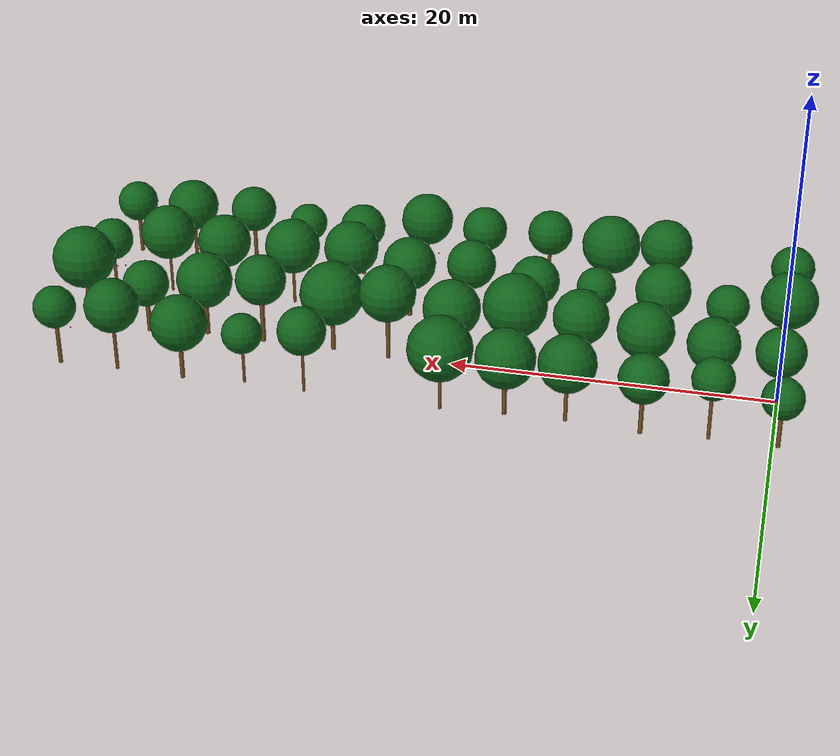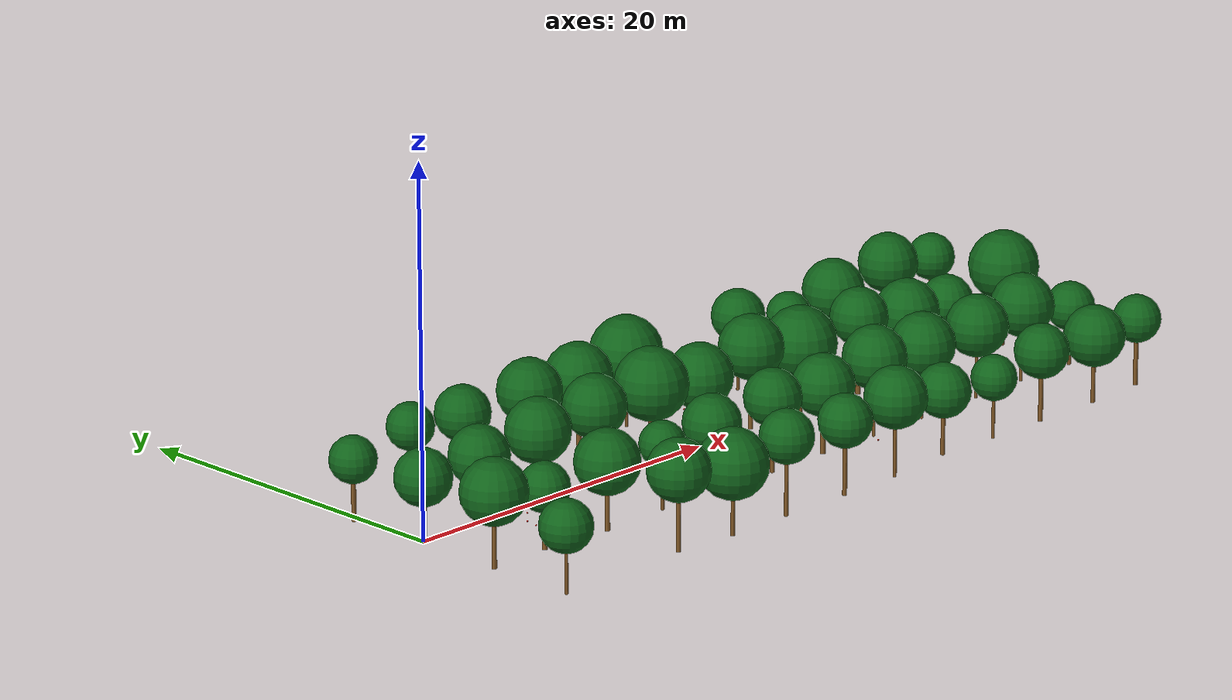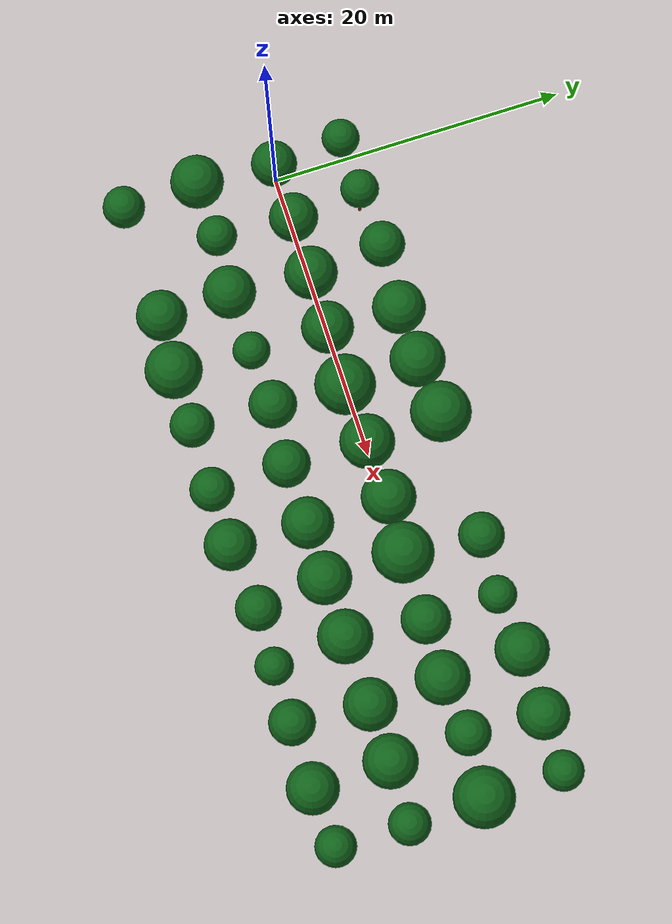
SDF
<sdf version="1.9">
 <world name="cheongsong_orchard">
  <model name="apple_tree_1144">
   <static>true</static>
   <pose>-0.11 -10.29 0 0 0 0</pose>
   <link name="link">
    <collision name="trunk_col">
     <pose>0 0 1.10 0 0 0</pose>
     <geometry><cylinder><radius>0.088</radius><length>2.19</length></cylinder></geometry>
    </collision>
    <visual name="trunk_vis">
     <pose>0 0 1.10 0 0 0</pose>
     <geometry><cylinder><radius>0.088</radius><length>2.19</length></cylinder></geometry>
     <material><ambient>0.35 0.22 0.08 1</ambient><diffuse>0.45 0.30 0.12 1</diffuse></material>
    </visual>
    <collision name="canopy_col">
     <pose>0 0 3.58 0 0 0</pose>
     <geometry><sphere><radius>1.39</radius></sphere></geometry>
    </collision>
    <visual name="canopy_vis">
     <pose>0 0 3.58 0 0 0</pose>
     <geometry><sphere><radius>1.39</radius></sphere></geometry>
     <material><ambient>0.04 0.28 0.06 1</ambient><diffuse>0.06 0.38 0.10 1</diffuse></material>
    </visual>
   </link>
  </model>
  <model name="apple_tree_1146">
   <static>true</static>
   <pose>7.98 -10.12 0 0 0 0</pose>
   <link name="link">
    <collision name="trunk_col">
     <pose>0 0 1.35 0 0 0</pose>
     <geometry><cylinder><radius>0.124</radius><length>2.69</length></cylinder></geometry>
    </collision>
    <visual name="trunk_vis">
     <pose>0 0 1.35 0 0 0</pose>
     <geometry><cylinder><radius>0.124</radius><length>2.69</length></cylinder></geometry>
     <material><ambient>0.35 0.22 0.08 1</ambient><diffuse>0.45 0.30 0.12 1</diffuse></material>
    </visual>
    <collision name="canopy_col">
     <pose>0 0 4.36 0 0 0</pose>
     <geometry><sphere><radius>1.66</radius></sphere></geometry>
    </collision>
    <visual name="canopy_vis">
     <pose>0 0 4.36 0 0 0</pose>
     <geometry><sphere><radius>1.66</radius></sphere></geometry>
     <material><ambient>0.04 0.28 0.06 1</ambient><diffuse>0.06 0.38 0.10 1</diffuse></material>
    </visual>
   </link>
  </model>
  <model name="apple_tree_1147">
   <static>true</static>
   <pose>11.56 -10.45 0 0 0 0</pose>
   <link name="link">
    <collision name="trunk_col">
     <pose>0 0 0.99 0 0 0</pose>
     <geometry><cylinder><radius>0.102</radius><length>1.98</length></cylinder></geometry>
    </collision>
    <visual name="trunk_vis">
     <pose>0 0 0.99 0 0 0</pose>
     <geometry><cylinder><radius>0.102</radius><length>1.98</length></cylinder></geometry>
     <material><ambient>0.35 0.22 0.08 1</ambient><diffuse>0.45 0.30 0.12 1</diffuse></material>
    </visual>
    <collision name="canopy_col">
     <pose>0 0 3.86 0 0 0</pose>
     <geometry><sphere><radius>1.88</radius></sphere></geometry>
    </collision>
    <visual name="canopy_vis">
     <pose>0 0 3.86 0 0 0</pose>
     <geometry><sphere><radius>1.88</radius></sphere></geometry>
     <material><ambient>0.04 0.28 0.06 1</ambient><diffuse>0.06 0.38 0.10 1</diffuse></material>
    </visual>
   </link>
  </model>
  <model name="apple_tree_1148">
   <static>true</static>
   <pose>15.55 -10.41 0 0 0 0</pose>
   <link name="link">
    <collision name="trunk_col">
     <pose>0 0 1.42 0 0 0</pose>
     <geometry><cylinder><radius>0.111</radius><length>2.85</length></cylinder></geometry>
    </collision>
    <visual name="trunk_vis">
     <pose>0 0 1.42 0 0 0</pose>
     <geometry><cylinder><radius>0.111</radius><length>2.85</length></cylinder></geometry>
     <material><ambient>0.35 0.22 0.08 1</ambient><diffuse>0.45 0.30 0.12 1</diffuse></material>
    </visual>
    <collision name="canopy_col">
     <pose>0 0 4.29 0 0 0</pose>
     <geometry><sphere><radius>1.44</radius></sphere></geometry>
    </collision>
    <visual name="canopy_vis">
     <pose>0 0 4.29 0 0 0</pose>
     <geometry><sphere><radius>1.44</radius></sphere></geometry>
     <material><ambient>0.04 0.28 0.06 1</ambient><diffuse>0.06 0.38 0.10 1</diffuse></material>
    </visual>
   </link>
  </model>
  <model name="apple_tree_1149">
   <static>true</static>
   <pose>19.89 -10.45 0 0 0 0</pose>
   <link name="link">
    <collision name="trunk_col">
     <pose>0 0 1.31 0 0 0</pose>
     <geometry><cylinder><radius>0.119</radius><length>2.61</length></cylinder></geometry>
    </collision>
    <visual name="trunk_vis">
     <pose>0 0 1.31 0 0 0</pose>
     <geometry><cylinder><radius>0.119</radius><length>2.61</length></cylinder></geometry>
     <material><ambient>0.35 0.22 0.08 1</ambient><diffuse>0.45 0.30 0.12 1</diffuse></material>
    </visual>
    <collision name="canopy_col">
     <pose>0 0 4.05 0 0 0</pose>
     <geometry><sphere><radius>1.44</radius></sphere></geometry>
    </collision>
    <visual name="canopy_vis">
     <pose>0 0 4.05 0 0 0</pose>
     <geometry><sphere><radius>1.44</radius></sphere></geometry>
     <material><ambient>0.04 0.28 0.06 1</ambient><diffuse>0.06 0.38 0.10 1</diffuse></material>
    </visual>
   </link>
  </model>
  <model name="apple_tree_1150">
   <static>true</static>
   <pose>23.74 -10.43 0 0 0 0</pose>
   <link name="link">
    <collision name="trunk_col">
     <pose>0 0 1.34 0 0 0</pose>
     <geometry><cylinder><radius>0.096</radius><length>2.68</length></cylinder></geometry>
    </collision>
    <visual name="trunk_vis">
     <pose>0 0 1.34 0 0 0</pose>
     <geometry><cylinder><radius>0.096</radius><length>2.68</length></cylinder></geometry>
     <material><ambient>0.35 0.22 0.08 1</ambient><diffuse>0.45 0.30 0.12 1</diffuse></material>
    </visual>
    <collision name="canopy_col">
     <pose>0 0 4.36 0 0 0</pose>
     <geometry><sphere><radius>1.68</radius></sphere></geometry>
    </collision>
    <visual name="canopy_vis">
     <pose>0 0 4.36 0 0 0</pose>
     <geometry><sphere><radius>1.68</radius></sphere></geometry>
     <material><ambient>0.04 0.28 0.06 1</ambient><diffuse>0.06 0.38 0.10 1</diffuse></material>
    </visual>
   </link>
  </model>
  <model name="apple_tree_1151">
   <static>true</static>
   <pose>28.01 -9.95 0 0 0 0</pose>
   <link name="link">
    <collision name="trunk_col">
     <pose>0 0 1.04 0 0 0</pose>
     <geometry><cylinder><radius>0.116</radius><length>2.07</length></cylinder></geometry>
    </collision>
    <visual name="trunk_vis">
     <pose>0 0 1.04 0 0 0</pose>
     <geometry><cylinder><radius>0.116</radius><length>2.07</length></cylinder></geometry>
     <material><ambient>0.35 0.22 0.08 1</ambient><diffuse>0.45 0.30 0.12 1</diffuse></material>
    </visual>
    <collision name="canopy_col">
     <pose>0 0 3.56 0 0 0</pose>
     <geometry><sphere><radius>1.48</radius></sphere></geometry>
    </collision>
    <visual name="canopy_vis">
     <pose>0 0 3.56 0 0 0</pose>
     <geometry><sphere><radius>1.48</radius></sphere></geometry>
     <material><ambient>0.04 0.28 0.06 1</ambient><diffuse>0.06 0.38 0.10 1</diffuse></material>
    </visual>
   </link>
  </model>
  <model name="apple_tree_1152">
   <static>true</static>
   <pose>31.80 -10.12 0 0 0 0</pose>
   <link name="link">
    <collision name="trunk_col">
     <pose>0 0 1.07 0 0 0</pose>
     <geometry><cylinder><radius>0.090</radius><length>2.13</length></cylinder></geometry>
    </collision>
    <visual name="trunk_vis">
     <pose>0 0 1.07 0 0 0</pose>
     <geometry><cylinder><radius>0.090</radius><length>2.13</length></cylinder></geometry>
     <material><ambient>0.35 0.22 0.08 1</ambient><diffuse>0.45 0.30 0.12 1</diffuse></material>
    </visual>
    <collision name="canopy_col">
     <pose>0 0 3.37 0 0 0</pose>
     <geometry><sphere><radius>1.24</radius></sphere></geometry>
    </collision>
    <visual name="canopy_vis">
     <pose>0 0 3.37 0 0 0</pose>
     <geometry><sphere><radius>1.24</radius></sphere></geometry>
     <material><ambient>0.04 0.28 0.06 1</ambient><diffuse>0.06 0.38 0.10 1</diffuse></material>
    </visual>
   </link>
  </model>
  <model name="apple_tree_1153">
   <static>true</static>
   <pose>35.59 -10.14 0 0 0 0</pose>
   <link name="link">
    <collision name="trunk_col">
     <pose>0 0 1.23 0 0 0</pose>
     <geometry><cylinder><radius>0.126</radius><length>2.45</length></cylinder></geometry>
    </collision>
    <visual name="trunk_vis">
     <pose>0 0 1.23 0 0 0</pose>
     <geometry><cylinder><radius>0.126</radius><length>2.45</length></cylinder></geometry>
     <material><ambient>0.35 0.22 0.08 1</ambient><diffuse>0.45 0.30 0.12 1</diffuse></material>
    </visual>
    <collision name="canopy_col">
     <pose>0 0 3.94 0 0 0</pose>
     <geometry><sphere><radius>1.49</radius></sphere></geometry>
    </collision>
    <visual name="canopy_vis">
     <pose>0 0 3.94 0 0 0</pose>
     <geometry><sphere><radius>1.49</radius></sphere></geometry>
     <material><ambient>0.04 0.28 0.06 1</ambient><diffuse>0.06 0.38 0.10 1</diffuse></material>
    </visual>
   </link>
  </model>
  <model name="apple_tree_1154">
   <static>true</static>
   <pose>39.86 -10.16 0 0 0 0</pose>
   <link name="link">
    <collision name="trunk_col">
     <pose>0 0 1.05 0 0 0</pose>
     <geometry><cylinder><radius>0.113</radius><length>2.09</length></cylinder></geometry>
    </collision>
    <visual name="trunk_vis">
     <pose>0 0 1.05 0 0 0</pose>
     <geometry><cylinder><radius>0.113</radius><length>2.09</length></cylinder></geometry>
     <material><ambient>0.35 0.22 0.08 1</ambient><diffuse>0.45 0.30 0.12 1</diffuse></material>
    </visual>
    <collision name="canopy_col">
     <pose>0 0 3.77 0 0 0</pose>
     <geometry><sphere><radius>1.68</radius></sphere></geometry>
    </collision>
    <visual name="canopy_vis">
     <pose>0 0 3.77 0 0 0</pose>
     <geometry><sphere><radius>1.68</radius></sphere></geometry>
     <material><ambient>0.04 0.28 0.06 1</ambient><diffuse>0.06 0.38 0.10 1</diffuse></material>
    </visual>
   </link>
  </model>
  <model name="apple_tree_1155">
   <static>true</static>
   <pose>43.69 -9.91 0 0 0 0</pose>
   <link name="link">
    <collision name="trunk_col">
     <pose>0 0 1.23 0 0 0</pose>
     <geometry><cylinder><radius>0.126</radius><length>2.45</length></cylinder></geometry>
    </collision>
    <visual name="trunk_vis">
     <pose>0 0 1.23 0 0 0</pose>
     <geometry><cylinder><radius>0.126</radius><length>2.45</length></cylinder></geometry>
     <material><ambient>0.35 0.22 0.08 1</ambient><diffuse>0.45 0.30 0.12 1</diffuse></material>
    </visual>
    <collision name="canopy_col">
     <pose>0 0 3.77 0 0 0</pose>
     <geometry><sphere><radius>1.32</radius></sphere></geometry>
    </collision>
    <visual name="canopy_vis">
     <pose>0 0 3.77 0 0 0</pose>
     <geometry><sphere><radius>1.32</radius></sphere></geometry>
     <material><ambient>0.04 0.28 0.06 1</ambient><diffuse>0.06 0.38 0.10 1</diffuse></material>
    </visual>
   </link>
  </model>
  <model name="apple_tree_1199">
   <static>true</static>
   <pose>-0.12 -5.23 0 0 0 0</pose>
   <link name="link">
    <collision name="trunk_col">
     <pose>0 0 1.16 0 0 0</pose>
     <geometry><cylinder><radius>0.126</radius><length>2.33</length></cylinder></geometry>
    </collision>
    <visual name="trunk_vis">
     <pose>0 0 1.16 0 0 0</pose>
     <geometry><cylinder><radius>0.126</radius><length>2.33</length></cylinder></geometry>
     <material><ambient>0.35 0.22 0.08 1</ambient><diffuse>0.45 0.30 0.12 1</diffuse></material>
    </visual>
    <collision name="canopy_col">
     <pose>0 0 4.08 0 0 0</pose>
     <geometry><sphere><radius>1.76</radius></sphere></geometry>
    </collision>
    <visual name="canopy_vis">
     <pose>0 0 4.08 0 0 0</pose>
     <geometry><sphere><radius>1.76</radius></sphere></geometry>
     <material><ambient>0.04 0.28 0.06 1</ambient><diffuse>0.06 0.38 0.10 1</diffuse></material>
    </visual>
   </link>
  </model>
  <model name="apple_tree_1200">
   <static>true</static>
   <pose>3.57 -5.07 0 0 0 0</pose>
   <link name="link">
    <collision name="trunk_col">
     <pose>0 0 1.00 0 0 0</pose>
     <geometry><cylinder><radius>0.142</radius><length>1.99</length></cylinder></geometry>
    </collision>
    <visual name="trunk_vis">
     <pose>0 0 1.00 0 0 0</pose>
     <geometry><cylinder><radius>0.142</radius><length>1.99</length></cylinder></geometry>
     <material><ambient>0.35 0.22 0.08 1</ambient><diffuse>0.45 0.30 0.12 1</diffuse></material>
    </visual>
    <collision name="canopy_col">
     <pose>0 0 3.32 0 0 0</pose>
     <geometry><sphere><radius>1.33</radius></sphere></geometry>
    </collision>
    <visual name="canopy_vis">
     <pose>0 0 3.32 0 0 0</pose>
     <geometry><sphere><radius>1.33</radius></sphere></geometry>
     <material><ambient>0.04 0.28 0.06 1</ambient><diffuse>0.06 0.38 0.10 1</diffuse></material>
    </visual>
   </link>
  </model>
  <model name="apple_tree_1201">
   <static>true</static>
   <pose>7.63 -5.46 0 0 0 0</pose>
   <link name="link">
    <collision name="trunk_col">
     <pose>0 0 0.99 0 0 0</pose>
     <geometry><cylinder><radius>0.125</radius><length>1.98</length></cylinder></geometry>
    </collision>
    <visual name="trunk_vis">
     <pose>0 0 0.99 0 0 0</pose>
     <geometry><cylinder><radius>0.125</radius><length>1.98</length></cylinder></geometry>
     <material><ambient>0.35 0.22 0.08 1</ambient><diffuse>0.45 0.30 0.12 1</diffuse></material>
    </visual>
    <collision name="canopy_col">
     <pose>0 0 3.72 0 0 0</pose>
     <geometry><sphere><radius>1.74</radius></sphere></geometry>
    </collision>
    <visual name="canopy_vis">
     <pose>0 0 3.72 0 0 0</pose>
     <geometry><sphere><radius>1.74</radius></sphere></geometry>
     <material><ambient>0.04 0.28 0.06 1</ambient><diffuse>0.06 0.38 0.10 1</diffuse></material>
    </visual>
   </link>
  </model>
  <model name="apple_tree_1202">
   <static>true</static>
   <pose>11.79 -5.28 0 0 0 0</pose>
   <link name="link">
    <collision name="trunk_col">
     <pose>0 0 1.17 0 0 0</pose>
     <geometry><cylinder><radius>0.094</radius><length>2.34</length></cylinder></geometry>
    </collision>
    <visual name="trunk_vis">
     <pose>0 0 1.17 0 0 0</pose>
     <geometry><cylinder><radius>0.094</radius><length>2.34</length></cylinder></geometry>
     <material><ambient>0.35 0.22 0.08 1</ambient><diffuse>0.45 0.30 0.12 1</diffuse></material>
    </visual>
    <collision name="canopy_col">
     <pose>0 0 3.57 0 0 0</pose>
     <geometry><sphere><radius>1.23</radius></sphere></geometry>
    </collision>
    <visual name="canopy_vis">
     <pose>0 0 3.57 0 0 0</pose>
     <geometry><sphere><radius>1.23</radius></sphere></geometry>
     <material><ambient>0.04 0.28 0.06 1</ambient><diffuse>0.06 0.38 0.10 1</diffuse></material>
    </visual>
   </link>
  </model>
  <model name="apple_tree_1203">
   <static>true</static>
   <pose>15.66 -5.06 0 0 0 0</pose>
   <link name="link">
    <collision name="trunk_col">
     <pose>0 0 1.04 0 0 0</pose>
     <geometry><cylinder><radius>0.127</radius><length>2.08</length></cylinder></geometry>
    </collision>
    <visual name="trunk_vis">
     <pose>0 0 1.04 0 0 0</pose>
     <geometry><cylinder><radius>0.127</radius><length>2.08</length></cylinder></geometry>
     <material><ambient>0.35 0.22 0.08 1</ambient><diffuse>0.45 0.30 0.12 1</diffuse></material>
    </visual>
    <collision name="canopy_col">
     <pose>0 0 3.65 0 0 0</pose>
     <geometry><sphere><radius>1.57</radius></sphere></geometry>
    </collision>
    <visual name="canopy_vis">
     <pose>0 0 3.65 0 0 0</pose>
     <geometry><sphere><radius>1.57</radius></sphere></geometry>
     <material><ambient>0.04 0.28 0.06 1</ambient><diffuse>0.06 0.38 0.10 1</diffuse></material>
    </visual>
   </link>
  </model>
  <model name="apple_tree_1204">
   <static>true</static>
   <pose>19.79 -5.44 0 0 0 0</pose>
   <link name="link">
    <collision name="trunk_col">
     <pose>0 0 1.30 0 0 0</pose>
     <geometry><cylinder><radius>0.130</radius><length>2.59</length></cylinder></geometry>
    </collision>
    <visual name="trunk_vis">
     <pose>0 0 1.30 0 0 0</pose>
     <geometry><cylinder><radius>0.130</radius><length>2.59</length></cylinder></geometry>
     <material><ambient>0.35 0.22 0.08 1</ambient><diffuse>0.45 0.30 0.12 1</diffuse></material>
    </visual>
    <collision name="canopy_col">
     <pose>0 0 4.14 0 0 0</pose>
     <geometry><sphere><radius>1.55</radius></sphere></geometry>
    </collision>
    <visual name="canopy_vis">
     <pose>0 0 4.14 0 0 0</pose>
     <geometry><sphere><radius>1.55</radius></sphere></geometry>
     <material><ambient>0.04 0.28 0.06 1</ambient><diffuse>0.06 0.38 0.10 1</diffuse></material>
    </visual>
   </link>
  </model>
  <model name="apple_tree_1205">
   <static>true</static>
   <pose>23.79 -5.32 0 0 0 0</pose>
   <link name="link">
    <collision name="trunk_col">
     <pose>0 0 1.05 0 0 0</pose>
     <geometry><cylinder><radius>0.139</radius><length>2.11</length></cylinder></geometry>
    </collision>
    <visual name="trunk_vis">
     <pose>0 0 1.05 0 0 0</pose>
     <geometry><cylinder><radius>0.139</radius><length>2.11</length></cylinder></geometry>
     <material><ambient>0.35 0.22 0.08 1</ambient><diffuse>0.45 0.30 0.12 1</diffuse></material>
    </visual>
    <collision name="canopy_col">
     <pose>0 0 3.79 0 0 0</pose>
     <geometry><sphere><radius>1.69</radius></sphere></geometry>
    </collision>
    <visual name="canopy_vis">
     <pose>0 0 3.79 0 0 0</pose>
     <geometry><sphere><radius>1.69</radius></sphere></geometry>
     <material><ambient>0.04 0.28 0.06 1</ambient><diffuse>0.06 0.38 0.10 1</diffuse></material>
    </visual>
   </link>
  </model>
  <model name="apple_tree_1206">
   <static>true</static>
   <pose>27.62 -5.42 0 0 0 0</pose>
   <link name="link">
    <collision name="trunk_col">
     <pose>0 0 1.34 0 0 0</pose>
     <geometry><cylinder><radius>0.092</radius><length>2.67</length></cylinder></geometry>
    </collision>
    <visual name="trunk_vis">
     <pose>0 0 1.34 0 0 0</pose>
     <geometry><cylinder><radius>0.092</radius><length>2.67</length></cylinder></geometry>
     <material><ambient>0.35 0.22 0.08 1</ambient><diffuse>0.45 0.30 0.12 1</diffuse></material>
    </visual>
    <collision name="canopy_col">
     <pose>0 0 4.41 0 0 0</pose>
     <geometry><sphere><radius>1.74</radius></sphere></geometry>
    </collision>
    <visual name="canopy_vis">
     <pose>0 0 4.41 0 0 0</pose>
     <geometry><sphere><radius>1.74</radius></sphere></geometry>
     <material><ambient>0.04 0.28 0.06 1</ambient><diffuse>0.06 0.38 0.10 1</diffuse></material>
    </visual>
   </link>
  </model>
  <model name="apple_tree_1207">
   <static>true</static>
   <pose>31.52 -5.33 0 0 0 0</pose>
   <link name="link">
    <collision name="trunk_col">
     <pose>0 0 1.19 0 0 0</pose>
     <geometry><cylinder><radius>0.092</radius><length>2.38</length></cylinder></geometry>
    </collision>
    <visual name="trunk_vis">
     <pose>0 0 1.19 0 0 0</pose>
     <geometry><cylinder><radius>0.092</radius><length>2.38</length></cylinder></geometry>
     <material><ambient>0.35 0.22 0.08 1</ambient><diffuse>0.45 0.30 0.12 1</diffuse></material>
    </visual>
    <collision name="canopy_col">
     <pose>0 0 4.15 0 0 0</pose>
     <geometry><sphere><radius>1.77</radius></sphere></geometry>
    </collision>
    <visual name="canopy_vis">
     <pose>0 0 4.15 0 0 0</pose>
     <geometry><sphere><radius>1.77</radius></sphere></geometry>
     <material><ambient>0.04 0.28 0.06 1</ambient><diffuse>0.06 0.38 0.10 1</diffuse></material>
    </visual>
   </link>
  </model>
  <model name="apple_tree_1208">
   <static>true</static>
   <pose>36.05 -5.17 0 0 0 0</pose>
   <link name="link">
    <collision name="trunk_col">
     <pose>0 0 1.19 0 0 0</pose>
     <geometry><cylinder><radius>0.083</radius><length>2.38</length></cylinder></geometry>
    </collision>
    <visual name="trunk_vis">
     <pose>0 0 1.19 0 0 0</pose>
     <geometry><cylinder><radius>0.083</radius><length>2.38</length></cylinder></geometry>
     <material><ambient>0.35 0.22 0.08 1</ambient><diffuse>0.45 0.30 0.12 1</diffuse></material>
    </visual>
    <collision name="canopy_col">
     <pose>0 0 4.09 0 0 0</pose>
     <geometry><sphere><radius>1.71</radius></sphere></geometry>
    </collision>
    <visual name="canopy_vis">
     <pose>0 0 4.09 0 0 0</pose>
     <geometry><sphere><radius>1.71</radius></sphere></geometry>
     <material><ambient>0.04 0.28 0.06 1</ambient><diffuse>0.06 0.38 0.10 1</diffuse></material>
    </visual>
   </link>
  </model>
  <model name="apple_tree_1209">
   <static>true</static>
   <pose>39.82 -5.09 0 0 0 0</pose>
   <link name="link">
    <collision name="trunk_col">
     <pose>0 0 1.30 0 0 0</pose>
     <geometry><cylinder><radius>0.087</radius><length>2.59</length></cylinder></geometry>
    </collision>
    <visual name="trunk_vis">
     <pose>0 0 1.30 0 0 0</pose>
     <geometry><cylinder><radius>0.087</radius><length>2.59</length></cylinder></geometry>
     <material><ambient>0.35 0.22 0.08 1</ambient><diffuse>0.45 0.30 0.12 1</diffuse></material>
    </visual>
    <collision name="canopy_col">
     <pose>0 0 4.35 0 0 0</pose>
     <geometry><sphere><radius>1.75</radius></sphere></geometry>
    </collision>
    <visual name="canopy_vis">
     <pose>0 0 4.35 0 0 0</pose>
     <geometry><sphere><radius>1.75</radius></sphere></geometry>
     <material><ambient>0.04 0.28 0.06 1</ambient><diffuse>0.06 0.38 0.10 1</diffuse></material>
    </visual>
   </link>
  </model>
  <model name="apple_tree_1210">
   <static>true</static>
   <pose>43.78 -5.13 0 0 0 0</pose>
   <link name="link">
    <collision name="trunk_col">
     <pose>0 0 1.00 0 0 0</pose>
     <geometry><cylinder><radius>0.106</radius><length>2.00</length></cylinder></geometry>
    </collision>
    <visual name="trunk_vis">
     <pose>0 0 1.00 0 0 0</pose>
     <geometry><cylinder><radius>0.106</radius><length>2.00</length></cylinder></geometry>
     <material><ambient>0.35 0.22 0.08 1</ambient><diffuse>0.45 0.30 0.12 1</diffuse></material>
    </visual>
    <collision name="canopy_col">
     <pose>0 0 3.36 0 0 0</pose>
     <geometry><sphere><radius>1.36</radius></sphere></geometry>
    </collision>
    <visual name="canopy_vis">
     <pose>0 0 3.36 0 0 0</pose>
     <geometry><sphere><radius>1.36</radius></sphere></geometry>
     <material><ambient>0.04 0.28 0.06 1</ambient><diffuse>0.06 0.38 0.10 1</diffuse></material>
    </visual>
   </link>
  </model>
  <model name="apple_tree_1255">
   <static>true</static>
   <pose>0.03 -0.01 0 0 0 0</pose>
   <link name="link">
    <collision name="trunk_col">
     <pose>0 0 0.98 0 0 0</pose>
     <geometry><cylinder><radius>0.141</radius><length>1.95</length></cylinder></geometry>
    </collision>
    <visual name="trunk_vis">
     <pose>0 0 0.98 0 0 0</pose>
     <geometry><cylinder><radius>0.141</radius><length>1.95</length></cylinder></geometry>
     <material><ambient>0.35 0.22 0.08 1</ambient><diffuse>0.45 0.30 0.12 1</diffuse></material>
    </visual>
    <collision name="canopy_col">
     <pose>0 0 3.47 0 0 0</pose>
     <geometry><sphere><radius>1.52</radius></sphere></geometry>
    </collision>
    <visual name="canopy_vis">
     <pose>0 0 3.47 0 0 0</pose>
     <geometry><sphere><radius>1.52</radius></sphere></geometry>
     <material><ambient>0.04 0.28 0.06 1</ambient><diffuse>0.06 0.38 0.10 1</diffuse></material>
    </visual>
   </link>
  </model>
  <model name="apple_tree_1256">
   <static>true</static>
   <pose>4.01 0.07 0 0 0 0</pose>
   <link name="link">
    <collision name="trunk_col">
     <pose>0 0 0.99 0 0 0</pose>
     <geometry><cylinder><radius>0.089</radius><length>1.98</length></cylinder></geometry>
    </collision>
    <visual name="trunk_vis">
     <pose>0 0 0.99 0 0 0</pose>
     <geometry><cylinder><radius>0.089</radius><length>1.98</length></cylinder></geometry>
     <material><ambient>0.35 0.22 0.08 1</ambient><diffuse>0.45 0.30 0.12 1</diffuse></material>
    </visual>
    <collision name="canopy_col">
     <pose>0 0 3.60 0 0 0</pose>
     <geometry><sphere><radius>1.62</radius></sphere></geometry>
    </collision>
    <visual name="canopy_vis">
     <pose>0 0 3.60 0 0 0</pose>
     <geometry><sphere><radius>1.62</radius></sphere></geometry>
     <material><ambient>0.04 0.28 0.06 1</ambient><diffuse>0.06 0.38 0.10 1</diffuse></material>
    </visual>
   </link>
  </model>
  <model name="apple_tree_1257">
   <static>true</static>
   <pose>8.08 -0.04 0 0 0 0</pose>
   <link name="link">
    <collision name="trunk_col">
     <pose>0 0 1.10 0 0 0</pose>
     <geometry><cylinder><radius>0.112</radius><length>2.19</length></cylinder></geometry>
    </collision>
    <visual name="trunk_vis">
     <pose>0 0 1.10 0 0 0</pose>
     <geometry><cylinder><radius>0.112</radius><length>2.19</length></cylinder></geometry>
     <material><ambient>0.35 0.22 0.08 1</ambient><diffuse>0.45 0.30 0.12 1</diffuse></material>
    </visual>
    <collision name="canopy_col">
     <pose>0 0 3.94 0 0 0</pose>
     <geometry><sphere><radius>1.75</radius></sphere></geometry>
    </collision>
    <visual name="canopy_vis">
     <pose>0 0 3.94 0 0 0</pose>
     <geometry><sphere><radius>1.75</radius></sphere></geometry>
     <material><ambient>0.04 0.28 0.06 1</ambient><diffuse>0.06 0.38 0.10 1</diffuse></material>
    </visual>
   </link>
  </model>
  <model name="apple_tree_1258">
   <static>true</static>
   <pose>12.03 -0.18 0 0 0 0</pose>
   <link name="link">
    <collision name="trunk_col">
     <pose>0 0 1.30 0 0 0</pose>
     <geometry><cylinder><radius>0.080</radius><length>2.59</length></cylinder></geometry>
    </collision>
    <visual name="trunk_vis">
     <pose>0 0 1.30 0 0 0</pose>
     <geometry><cylinder><radius>0.080</radius><length>2.59</length></cylinder></geometry>
     <material><ambient>0.35 0.22 0.08 1</ambient><diffuse>0.45 0.30 0.12 1</diffuse></material>
    </visual>
    <collision name="canopy_col">
     <pose>0 0 4.30 0 0 0</pose>
     <geometry><sphere><radius>1.71</radius></sphere></geometry>
    </collision>
    <visual name="canopy_vis">
     <pose>0 0 4.30 0 0 0</pose>
     <geometry><sphere><radius>1.71</radius></sphere></geometry>
     <material><ambient>0.04 0.28 0.06 1</ambient><diffuse>0.06 0.38 0.10 1</diffuse></material>
    </visual>
   </link>
  </model>
  <model name="apple_tree_1259">
   <static>true</static>
   <pose>16.08 -0.30 0 0 0 0</pose>
   <link name="link">
    <collision name="trunk_col">
     <pose>0 0 1.28 0 0 0</pose>
     <geometry><cylinder><radius>0.141</radius><length>2.57</length></cylinder></geometry>
    </collision>
    <visual name="trunk_vis">
     <pose>0 0 1.28 0 0 0</pose>
     <geometry><cylinder><radius>0.141</radius><length>2.57</length></cylinder></geometry>
     <material><ambient>0.35 0.22 0.08 1</ambient><diffuse>0.45 0.30 0.12 1</diffuse></material>
    </visual>
    <collision name="canopy_col">
     <pose>0 0 4.54 0 0 0</pose>
     <geometry><sphere><radius>1.98</radius></sphere></geometry>
    </collision>
    <visual name="canopy_vis">
     <pose>0 0 4.54 0 0 0</pose>
     <geometry><sphere><radius>1.98</radius></sphere></geometry>
     <material><ambient>0.04 0.28 0.06 1</ambient><diffuse>0.06 0.38 0.10 1</diffuse></material>
    </visual>
   </link>
  </model>
  <model name="apple_tree_1260">
   <static>true</static>
   <pose>19.95 -0.08 0 0 0 0</pose>
   <link name="link">
    <collision name="trunk_col">
     <pose>0 0 1.09 0 0 0</pose>
     <geometry><cylinder><radius>0.114</radius><length>2.18</length></cylinder></geometry>
    </collision>
    <visual name="trunk_vis">
     <pose>0 0 1.09 0 0 0</pose>
     <geometry><cylinder><radius>0.114</radius><length>2.18</length></cylinder></geometry>
     <material><ambient>0.35 0.22 0.08 1</ambient><diffuse>0.45 0.30 0.12 1</diffuse></material>
    </visual>
    <collision name="canopy_col">
     <pose>0 0 3.97 0 0 0</pose>
     <geometry><sphere><radius>1.79</radius></sphere></geometry>
    </collision>
    <visual name="canopy_vis">
     <pose>0 0 3.97 0 0 0</pose>
     <geometry><sphere><radius>1.79</radius></sphere></geometry>
     <material><ambient>0.04 0.28 0.06 1</ambient><diffuse>0.06 0.38 0.10 1</diffuse></material>
    </visual>
   </link>
  </model>
  <model name="apple_tree_1261">
   <static>true</static>
   <pose>23.94 0.03 0 0 0 0</pose>
   <link name="link">
    <collision name="trunk_col">
     <pose>0 0 1.40 0 0 0</pose>
     <geometry><cylinder><radius>0.135</radius><length>2.80</length></cylinder></geometry>
    </collision>
    <visual name="trunk_vis">
     <pose>0 0 1.40 0 0 0</pose>
     <geometry><cylinder><radius>0.135</radius><length>2.80</length></cylinder></geometry>
     <material><ambient>0.35 0.22 0.08 1</ambient><diffuse>0.45 0.30 0.12 1</diffuse></material>
    </visual>
    <collision name="canopy_col">
     <pose>0 0 4.58 0 0 0</pose>
     <geometry><sphere><radius>1.77</radius></sphere></geometry>
    </collision>
    <visual name="canopy_vis">
     <pose>0 0 4.58 0 0 0</pose>
     <geometry><sphere><radius>1.77</radius></sphere></geometry>
     <material><ambient>0.04 0.28 0.06 1</ambient><diffuse>0.06 0.38 0.10 1</diffuse></material>
    </visual>
   </link>
  </model>
  <model name="apple_tree_1262">
   <static>true</static>
   <pose>27.53 -0.19 0 0 0 0</pose>
   <link name="link">
    <collision name="trunk_col">
     <pose>0 0 1.02 0 0 0</pose>
     <geometry><cylinder><radius>0.138</radius><length>2.03</length></cylinder></geometry>
    </collision>
    <visual name="trunk_vis">
     <pose>0 0 1.02 0 0 0</pose>
     <geometry><cylinder><radius>0.138</radius><length>2.03</length></cylinder></geometry>
     <material><ambient>0.35 0.22 0.08 1</ambient><diffuse>0.45 0.30 0.12 1</diffuse></material>
    </visual>
    <collision name="canopy_col">
     <pose>0 0 4.03 0 0 0</pose>
     <geometry><sphere><radius>2.00</radius></sphere></geometry>
    </collision>
    <visual name="canopy_vis">
     <pose>0 0 4.03 0 0 0</pose>
     <geometry><sphere><radius>2.00</radius></sphere></geometry>
     <material><ambient>0.04 0.28 0.06 1</ambient><diffuse>0.06 0.38 0.10 1</diffuse></material>
    </visual>
   </link>
  </model>
  <model name="apple_tree_1263">
   <static>true</static>
   <pose>32.10 -0.21 0 0 0 0</pose>
   <link name="link">
    <collision name="trunk_col">
     <pose>0 0 1.41 0 0 0</pose>
     <geometry><cylinder><radius>0.147</radius><length>2.82</length></cylinder></geometry>
    </collision>
    <visual name="trunk_vis">
     <pose>0 0 1.41 0 0 0</pose>
     <geometry><cylinder><radius>0.147</radius><length>2.82</length></cylinder></geometry>
     <material><ambient>0.35 0.22 0.08 1</ambient><diffuse>0.45 0.30 0.12 1</diffuse></material>
    </visual>
    <collision name="canopy_col">
     <pose>0 0 4.41 0 0 0</pose>
     <geometry><sphere><radius>1.59</radius></sphere></geometry>
    </collision>
    <visual name="canopy_vis">
     <pose>0 0 4.41 0 0 0</pose>
     <geometry><sphere><radius>1.59</radius></sphere></geometry>
     <material><ambient>0.04 0.28 0.06 1</ambient><diffuse>0.06 0.38 0.10 1</diffuse></material>
    </visual>
   </link>
  </model>
  <model name="apple_tree_1264">
   <static>true</static>
   <pose>35.83 -0.34 0 0 0 0</pose>
   <link name="link">
    <collision name="trunk_col">
     <pose>0 0 1.06 0 0 0</pose>
     <geometry><cylinder><radius>0.146</radius><length>2.12</length></cylinder></geometry>
    </collision>
    <visual name="trunk_vis">
     <pose>0 0 1.06 0 0 0</pose>
     <geometry><cylinder><radius>0.146</radius><length>2.12</length></cylinder></geometry>
     <material><ambient>0.35 0.22 0.08 1</ambient><diffuse>0.45 0.30 0.12 1</diffuse></material>
    </visual>
    <collision name="canopy_col">
     <pose>0 0 3.88 0 0 0</pose>
     <geometry><sphere><radius>1.76</radius></sphere></geometry>
    </collision>
    <visual name="canopy_vis">
     <pose>0 0 3.88 0 0 0</pose>
     <geometry><sphere><radius>1.76</radius></sphere></geometry>
     <material><ambient>0.04 0.28 0.06 1</ambient><diffuse>0.06 0.38 0.10 1</diffuse></material>
    </visual>
   </link>
  </model>
  <model name="apple_tree_1265">
   <static>true</static>
   <pose>39.57 0.11 0 0 0 0</pose>
   <link name="link">
    <collision name="trunk_col">
     <pose>0 0 0.99 0 0 0</pose>
     <geometry><cylinder><radius>0.145</radius><length>1.98</length></cylinder></geometry>
    </collision>
    <visual name="trunk_vis">
     <pose>0 0 0.99 0 0 0</pose>
     <geometry><cylinder><radius>0.145</radius><length>1.98</length></cylinder></geometry>
     <material><ambient>0.35 0.22 0.08 1</ambient><diffuse>0.45 0.30 0.12 1</diffuse></material>
    </visual>
    <collision name="canopy_col">
     <pose>0 0 3.44 0 0 0</pose>
     <geometry><sphere><radius>1.46</radius></sphere></geometry>
    </collision>
    <visual name="canopy_vis">
     <pose>0 0 3.44 0 0 0</pose>
     <geometry><sphere><radius>1.46</radius></sphere></geometry>
     <material><ambient>0.04 0.28 0.06 1</ambient><diffuse>0.06 0.38 0.10 1</diffuse></material>
    </visual>
   </link>
  </model>
  <model name="apple_tree_1266">
   <static>true</static>
   <pose>43.74 -0.32 0 0 0 0</pose>
   <link name="link">
    <collision name="trunk_col">
     <pose>0 0 1.33 0 0 0</pose>
     <geometry><cylinder><radius>0.127</radius><length>2.65</length></cylinder></geometry>
    </collision>
    <visual name="trunk_vis">
     <pose>0 0 1.33 0 0 0</pose>
     <geometry><cylinder><radius>0.127</radius><length>2.65</length></cylinder></geometry>
     <material><ambient>0.35 0.22 0.08 1</ambient><diffuse>0.45 0.30 0.12 1</diffuse></material>
    </visual>
    <collision name="canopy_col">
     <pose>0 0 4.61 0 0 0</pose>
     <geometry><sphere><radius>1.96</radius></sphere></geometry>
    </collision>
    <visual name="canopy_vis">
     <pose>0 0 4.61 0 0 0</pose>
     <geometry><sphere><radius>1.96</radius></sphere></geometry>
     <material><ambient>0.04 0.28 0.06 1</ambient><diffuse>0.06 0.38 0.10 1</diffuse></material>
    </visual>
   </link>
  </model>
  <model name="apple_tree_1299">
   <static>true</static>
   <pose>-0.36 4.73 0 0 0 0</pose>
   <link name="link">
    <collision name="trunk_col">
     <pose>0 0 1.04 0 0 0</pose>
     <geometry><cylinder><radius>0.124</radius><length>2.08</length></cylinder></geometry>
    </collision>
    <visual name="trunk_vis">
     <pose>0 0 1.04 0 0 0</pose>
     <geometry><cylinder><radius>0.124</radius><length>2.08</length></cylinder></geometry>
     <material><ambient>0.35 0.22 0.08 1</ambient><diffuse>0.45 0.30 0.12 1</diffuse></material>
    </visual>
    <collision name="canopy_col">
     <pose>0 0 3.33 0 0 0</pose>
     <geometry><sphere><radius>1.26</radius></sphere></geometry>
    </collision>
    <visual name="canopy_vis">
     <pose>0 0 3.33 0 0 0</pose>
     <geometry><sphere><radius>1.26</radius></sphere></geometry>
     <material><ambient>0.04 0.28 0.06 1</ambient><diffuse>0.06 0.38 0.10 1</diffuse></material>
    </visual>
   </link>
  </model>
  <model name="apple_tree_1300">
   <static>true</static>
   <pose>3.66 4.74 0 0 0 0</pose>
   <link name="link">
    <collision name="trunk_col">
     <pose>0 0 1.42 0 0 0</pose>
     <geometry><cylinder><radius>0.108</radius><length>2.83</length></cylinder></geometry>
    </collision>
    <visual name="trunk_vis">
     <pose>0 0 1.42 0 0 0</pose>
     <geometry><cylinder><radius>0.108</radius><length>2.83</length></cylinder></geometry>
     <material><ambient>0.35 0.22 0.08 1</ambient><diffuse>0.45 0.30 0.12 1</diffuse></material>
    </visual>
    <collision name="canopy_col">
     <pose>0 0 4.10 0 0 0</pose>
     <geometry><sphere><radius>1.27</radius></sphere></geometry>
    </collision>
    <visual name="canopy_vis">
     <pose>0 0 4.10 0 0 0</pose>
     <geometry><sphere><radius>1.27</radius></sphere></geometry>
     <material><ambient>0.04 0.28 0.06 1</ambient><diffuse>0.06 0.38 0.10 1</diffuse></material>
    </visual>
   </link>
  </model>
  <model name="apple_tree_1301">
   <static>true</static>
   <pose>7.61 5.00 0 0 0 0</pose>
   <link name="link">
    <collision name="trunk_col">
     <pose>0 0 1.13 0 0 0</pose>
     <geometry><cylinder><radius>0.135</radius><length>2.26</length></cylinder></geometry>
    </collision>
    <visual name="trunk_vis">
     <pose>0 0 1.13 0 0 0</pose>
     <geometry><cylinder><radius>0.135</radius><length>2.26</length></cylinder></geometry>
     <material><ambient>0.35 0.22 0.08 1</ambient><diffuse>0.45 0.30 0.12 1</diffuse></material>
    </visual>
    <collision name="canopy_col">
     <pose>0 0 3.76 0 0 0</pose>
     <geometry><sphere><radius>1.50</radius></sphere></geometry>
    </collision>
    <visual name="canopy_vis">
     <pose>0 0 3.76 0 0 0</pose>
     <geometry><sphere><radius>1.50</radius></sphere></geometry>
     <material><ambient>0.04 0.28 0.06 1</ambient><diffuse>0.06 0.38 0.10 1</diffuse></material>
    </visual>
   </link>
  </model>
  <model name="apple_tree_1302">
   <static>true</static>
   <pose>12.09 4.66 0 0 0 0</pose>
   <link name="link">
    <collision name="trunk_col">
     <pose>0 0 1.11 0 0 0</pose>
     <geometry><cylinder><radius>0.117</radius><length>2.21</length></cylinder></geometry>
    </collision>
    <visual name="trunk_vis">
     <pose>0 0 1.11 0 0 0</pose>
     <geometry><cylinder><radius>0.117</radius><length>2.21</length></cylinder></geometry>
     <material><ambient>0.35 0.22 0.08 1</ambient><diffuse>0.45 0.30 0.12 1</diffuse></material>
    </visual>
    <collision name="canopy_col">
     <pose>0 0 3.96 0 0 0</pose>
     <geometry><sphere><radius>1.75</radius></sphere></geometry>
    </collision>
    <visual name="canopy_vis">
     <pose>0 0 3.96 0 0 0</pose>
     <geometry><sphere><radius>1.75</radius></sphere></geometry>
     <material><ambient>0.04 0.28 0.06 1</ambient><diffuse>0.06 0.38 0.10 1</diffuse></material>
    </visual>
   </link>
  </model>
  <model name="apple_tree_1303">
   <static>true</static>
   <pose>15.75 4.71 0 0 0 0</pose>
   <link name="link">
    <collision name="trunk_col">
     <pose>0 0 1.02 0 0 0</pose>
     <geometry><cylinder><radius>0.144</radius><length>2.04</length></cylinder></geometry>
    </collision>
    <visual name="trunk_vis">
     <pose>0 0 1.02 0 0 0</pose>
     <geometry><cylinder><radius>0.144</radius><length>2.04</length></cylinder></geometry>
     <material><ambient>0.35 0.22 0.08 1</ambient><diffuse>0.45 0.30 0.12 1</diffuse></material>
    </visual>
    <collision name="canopy_col">
     <pose>0 0 3.86 0 0 0</pose>
     <geometry><sphere><radius>1.82</radius></sphere></geometry>
    </collision>
    <visual name="canopy_vis">
     <pose>0 0 3.86 0 0 0</pose>
     <geometry><sphere><radius>1.82</radius></sphere></geometry>
     <material><ambient>0.04 0.28 0.06 1</ambient><diffuse>0.06 0.38 0.10 1</diffuse></material>
    </visual>
   </link>
  </model>
  <model name="apple_tree_1304">
   <static>true</static>
   <pose>19.60 4.99 0 0 0 0</pose>
   <link name="link">
    <collision name="trunk_col">
     <pose>0 0 1.11 0 0 0</pose>
     <geometry><cylinder><radius>0.087</radius><length>2.22</length></cylinder></geometry>
    </collision>
    <visual name="trunk_vis">
     <pose>0 0 1.11 0 0 0</pose>
     <geometry><cylinder><radius>0.087</radius><length>2.22</length></cylinder></geometry>
     <material><ambient>0.35 0.22 0.08 1</ambient><diffuse>0.45 0.30 0.12 1</diffuse></material>
    </visual>
    <collision name="canopy_col">
     <pose>0 0 4.20 0 0 0</pose>
     <geometry><sphere><radius>1.98</radius></sphere></geometry>
    </collision>
    <visual name="canopy_vis">
     <pose>0 0 4.20 0 0 0</pose>
     <geometry><sphere><radius>1.98</radius></sphere></geometry>
     <material><ambient>0.04 0.28 0.06 1</ambient><diffuse>0.06 0.38 0.10 1</diffuse></material>
    </visual>
   </link>
  </model>
  <model name="apple_tree_1306">
   <static>true</static>
   <pose>28.04 4.86 0 0 0 0</pose>
   <link name="link">
    <collision name="trunk_col">
     <pose>0 0 1.37 0 0 0</pose>
     <geometry><cylinder><radius>0.087</radius><length>2.74</length></cylinder></geometry>
    </collision>
    <visual name="trunk_vis">
     <pose>0 0 1.37 0 0 0</pose>
     <geometry><cylinder><radius>0.087</radius><length>2.74</length></cylinder></geometry>
     <material><ambient>0.35 0.22 0.08 1</ambient><diffuse>0.45 0.30 0.12 1</diffuse></material>
    </visual>
    <collision name="canopy_col">
     <pose>0 0 4.22 0 0 0</pose>
     <geometry><sphere><radius>1.48</radius></sphere></geometry>
    </collision>
    <visual name="canopy_vis">
     <pose>0 0 4.22 0 0 0</pose>
     <geometry><sphere><radius>1.48</radius></sphere></geometry>
     <material><ambient>0.04 0.28 0.06 1</ambient><diffuse>0.06 0.38 0.10 1</diffuse></material>
    </visual>
   </link>
  </model>
  <model name="apple_tree_1307">
   <static>true</static>
   <pose>31.85 4.68 0 0 0 0</pose>
   <link name="link">
    <collision name="trunk_col">
     <pose>0 0 1.11 0 0 0</pose>
     <geometry><cylinder><radius>0.087</radius><length>2.21</length></cylinder></geometry>
    </collision>
    <visual name="trunk_vis">
     <pose>0 0 1.11 0 0 0</pose>
     <geometry><cylinder><radius>0.087</radius><length>2.21</length></cylinder></geometry>
     <material><ambient>0.35 0.22 0.08 1</ambient><diffuse>0.45 0.30 0.12 1</diffuse></material>
    </visual>
    <collision name="canopy_col">
     <pose>0 0 3.45 0 0 0</pose>
     <geometry><sphere><radius>1.24</radius></sphere></geometry>
    </collision>
    <visual name="canopy_vis">
     <pose>0 0 3.45 0 0 0</pose>
     <geometry><sphere><radius>1.24</radius></sphere></geometry>
     <material><ambient>0.04 0.28 0.06 1</ambient><diffuse>0.06 0.38 0.10 1</diffuse></material>
    </visual>
   </link>
  </model>
  <model name="apple_tree_1308">
   <static>true</static>
   <pose>35.70 4.96 0 0 0 0</pose>
   <link name="link">
    <collision name="trunk_col">
     <pose>0 0 1.06 0 0 0</pose>
     <geometry><cylinder><radius>0.136</radius><length>2.13</length></cylinder></geometry>
    </collision>
    <visual name="trunk_vis">
     <pose>0 0 1.06 0 0 0</pose>
     <geometry><cylinder><radius>0.136</radius><length>2.13</length></cylinder></geometry>
     <material><ambient>0.35 0.22 0.08 1</ambient><diffuse>0.45 0.30 0.12 1</diffuse></material>
    </visual>
    <collision name="canopy_col">
     <pose>0 0 3.87 0 0 0</pose>
     <geometry><sphere><radius>1.74</radius></sphere></geometry>
    </collision>
    <visual name="canopy_vis">
     <pose>0 0 3.87 0 0 0</pose>
     <geometry><sphere><radius>1.74</radius></sphere></geometry>
     <material><ambient>0.04 0.28 0.06 1</ambient><diffuse>0.06 0.38 0.10 1</diffuse></material>
    </visual>
   </link>
  </model>
  <model name="apple_tree_1309">
   <static>true</static>
   <pose>39.98 4.84 0 0 0 0</pose>
   <link name="link">
    <collision name="trunk_col">
     <pose>0 0 1.40 0 0 0</pose>
     <geometry><cylinder><radius>0.108</radius><length>2.81</length></cylinder></geometry>
    </collision>
    <visual name="trunk_vis">
     <pose>0 0 1.40 0 0 0</pose>
     <geometry><cylinder><radius>0.108</radius><length>2.81</length></cylinder></geometry>
     <material><ambient>0.35 0.22 0.08 1</ambient><diffuse>0.45 0.30 0.12 1</diffuse></material>
    </visual>
    <collision name="canopy_col">
     <pose>0 0 4.48 0 0 0</pose>
     <geometry><sphere><radius>1.67</radius></sphere></geometry>
    </collision>
    <visual name="canopy_vis">
     <pose>0 0 4.48 0 0 0</pose>
     <geometry><sphere><radius>1.67</radius></sphere></geometry>
     <material><ambient>0.04 0.28 0.06 1</ambient><diffuse>0.06 0.38 0.10 1</diffuse></material>
    </visual>
   </link>
  </model>
  <model name="apple_tree_1310">
   <static>true</static>
   <pose>43.67 4.92 0 0 0 0</pose>
   <link name="link">
    <collision name="trunk_col">
     <pose>0 0 1.32 0 0 0</pose>
     <geometry><cylinder><radius>0.126</radius><length>2.65</length></cylinder></geometry>
    </collision>
    <visual name="trunk_vis">
     <pose>0 0 1.32 0 0 0</pose>
     <geometry><cylinder><radius>0.126</radius><length>2.65</length></cylinder></geometry>
     <material><ambient>0.35 0.22 0.08 1</ambient><diffuse>0.45 0.30 0.12 1</diffuse></material>
    </visual>
    <collision name="canopy_col">
     <pose>0 0 3.96 0 0 0</pose>
     <geometry><sphere><radius>1.31</radius></sphere></geometry>
    </collision>
    <visual name="canopy_vis">
     <pose>0 0 3.96 0 0 0</pose>
     <geometry><sphere><radius>1.31</radius></sphere></geometry>
     <material><ambient>0.04 0.28 0.06 1</ambient><diffuse>0.06 0.38 0.10 1</diffuse></material>
    </visual>
   </link>
  </model>
  <model name="apple_1150_1">
   <static>true</static>
   <pose>22.89 -10.02 2.13 0 0 0</pose>
   <link name="link">
    <visual name="visual">
     <geometry><sphere><radius>0.04</radius></sphere></geometry>
     <material><ambient>0.7 0.05 0.02 1</ambient><diffuse>0.9 0.10 0.05 1</diffuse></material>
    </visual>
   </link>
  </model>
  <model name="apple_1150_4">
   <static>true</static>
   <pose>24.78 -10.35 2.71 0 0 0</pose>
   <link name="link">
    <visual name="visual">
     <geometry><sphere><radius>0.04</radius></sphere></geometry>
     <material><ambient>0.7 0.05 0.02 1</ambient><diffuse>0.9 0.10 0.05 1</diffuse></material>
    </visual>
   </link>
  </model>
  <model name="apple_1200_0">
   <static>true</static>
   <pose>2.78 -5.26 1.52 0 0 0</pose>
   <link name="link">
    <visual name="visual">
     <geometry><sphere><radius>0.04</radius></sphere></geometry>
     <material><ambient>0.7 0.05 0.02 1</ambient><diffuse>0.9 0.10 0.05 1</diffuse></material>
    </visual>
   </link>
  </model>
  <model name="apple_1200_1">
   <static>true</static>
   <pose>3.42 -6.05 2.31 0 0 0</pose>
   <link name="link">
    <visual name="visual">
     <geometry><sphere><radius>0.04</radius></sphere></geometry>
     <material><ambient>0.7 0.05 0.02 1</ambient><diffuse>0.9 0.10 0.05 1</diffuse></material>
    </visual>
   </link>
  </model>
  <model name="apple_1200_2">
   <static>true</static>
   <pose>2.82 -4.60 1.57 0 0 0</pose>
   <link name="link">
    <visual name="visual">
     <geometry><sphere><radius>0.04</radius></sphere></geometry>
     <material><ambient>0.7 0.05 0.02 1</ambient><diffuse>0.9 0.10 0.05 1</diffuse></material>
    </visual>
   </link>
  </model>
  <model name="apple_1200_3">
   <static>true</static>
   <pose>2.97 -4.43 1.93 0 0 0</pose>
   <link name="link">
    <visual name="visual">
     <geometry><sphere><radius>0.04</radius></sphere></geometry>
     <material><ambient>0.7 0.05 0.02 1</ambient><diffuse>0.9 0.10 0.05 1</diffuse></material>
    </visual>
   </link>
  </model>
  <model name="apple_1200_4">
   <static>true</static>
   <pose>3.68 -5.67 1.62 0 0 0</pose>
   <link name="link">
    <visual name="visual">
     <geometry><sphere><radius>0.04</radius></sphere></geometry>
     <material><ambient>0.7 0.05 0.02 1</ambient><diffuse>0.9 0.10 0.05 1</diffuse></material>
    </visual>
   </link>
  </model>
  <model name="apple_1210_0">
   <static>true</static>
   <pose>43.43 -4.78 1.54 0 0 0</pose>
   <link name="link">
    <visual name="visual">
     <geometry><sphere><radius>0.04</radius></sphere></geometry>
     <material><ambient>0.7 0.05 0.02 1</ambient><diffuse>0.9 0.10 0.05 1</diffuse></material>
    </visual>
   </link>
  </model>
  <model name="apple_1210_1">
   <static>true</static>
   <pose>42.82 -4.62 1.77 0 0 0</pose>
   <link name="link">
    <visual name="visual">
     <geometry><sphere><radius>0.04</radius></sphere></geometry>
     <material><ambient>0.7 0.05 0.02 1</ambient><diffuse>0.9 0.10 0.05 1</diffuse></material>
    </visual>
   </link>
  </model>
  <model name="apple_1260_0">
   <static>true</static>
   <pose>19.16 1.03 2.64 0 0 0</pose>
   <link name="link">
    <visual name="visual">
     <geometry><sphere><radius>0.04</radius></sphere></geometry>
     <material><ambient>0.7 0.05 0.02 1</ambient><diffuse>0.9 0.10 0.05 1</diffuse></material>
    </visual>
   </link>
  </model>
  <model name="apple_1260_1">
   <static>true</static>
   <pose>18.92 0.07 2.34 0 0 0</pose>
   <link name="link">
    <visual name="visual">
     <geometry><sphere><radius>0.04</radius></sphere></geometry>
     <material><ambient>0.7 0.05 0.02 1</ambient><diffuse>0.9 0.10 0.05 1</diffuse></material>
    </visual>
   </link>
  </model>
  <model name="apple_1260_2">
   <static>true</static>
   <pose>20.55 0.35 2.22 0 0 0</pose>
   <link name="link">
    <visual name="visual">
     <geometry><sphere><radius>0.04</radius></sphere></geometry>
     <material><ambient>0.7 0.05 0.02 1</ambient><diffuse>0.9 0.10 0.05 1</diffuse></material>
    </visual>
   </link>
  </model>
  <model name="apple_1300_0">
   <static>true</static>
   <pose>3.23 3.87 2.45 0 0 0</pose>
   <link name="link">
    <visual name="visual">
     <geometry><sphere><radius>0.04</radius></sphere></geometry>
     <material><ambient>0.7 0.05 0.02 1</ambient><diffuse>0.9 0.10 0.05 1</diffuse></material>
    </visual>
   </link>
  </model>
  <model name="apple_1300_2">
   <static>true</static>
   <pose>3.15 4.18 2.96 0 0 0</pose>
   <link name="link">
    <visual name="visual">
     <geometry><sphere><radius>0.04</radius></sphere></geometry>
     <material><ambient>0.7 0.05 0.02 1</ambient><diffuse>0.9 0.10 0.05 1</diffuse></material>
    </visual>
   </link>
  </model>
  <model name="apple_1300_3">
   <static>true</static>
   <pose>2.96 4.44 2.78 0 0 0</pose>
   <link name="link">
    <visual name="visual">
     <geometry><sphere><radius>0.04</radius></sphere></geometry>
     <material><ambient>0.7 0.05 0.02 1</ambient><diffuse>0.9 0.10 0.05 1</diffuse></material>
    </visual>
   </link>
  </model>
  <model name="apple_1310_0">
   <static>true</static>
   <pose>43.63 4.58 2.79 0 0 0</pose>
   <link name="link">
    <visual name="visual">
     <geometry><sphere><radius>0.04</radius></sphere></geometry>
     <material><ambient>0.7 0.05 0.02 1</ambient><diffuse>0.9 0.10 0.05 1</diffuse></material>
    </visual>
   </link>
  </model>
  <model name="apple_1310_2">
   <static>true</static>
   <pose>43.02 4.40 2.29 0 0 0</pose>
   <link name="link">
    <visual name="visual">
     <geometry><sphere><radius>0.04</radius></sphere></geometry>
     <material><ambient>0.7 0.05 0.02 1</ambient><diffuse>0.9 0.10 0.05 1</diffuse></material>
    </visual>
   </link>
  </model>
 </world>
</sdf>
